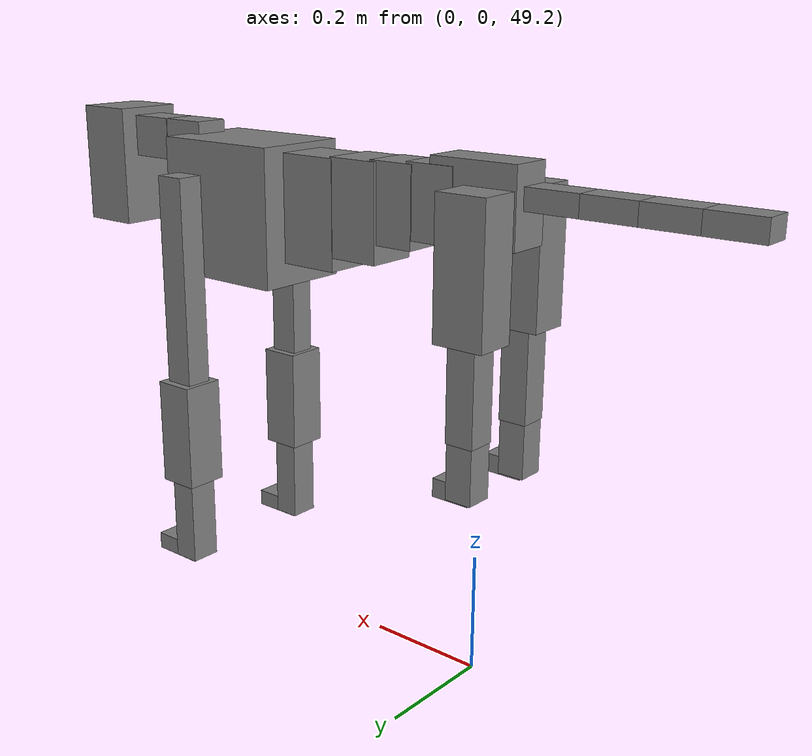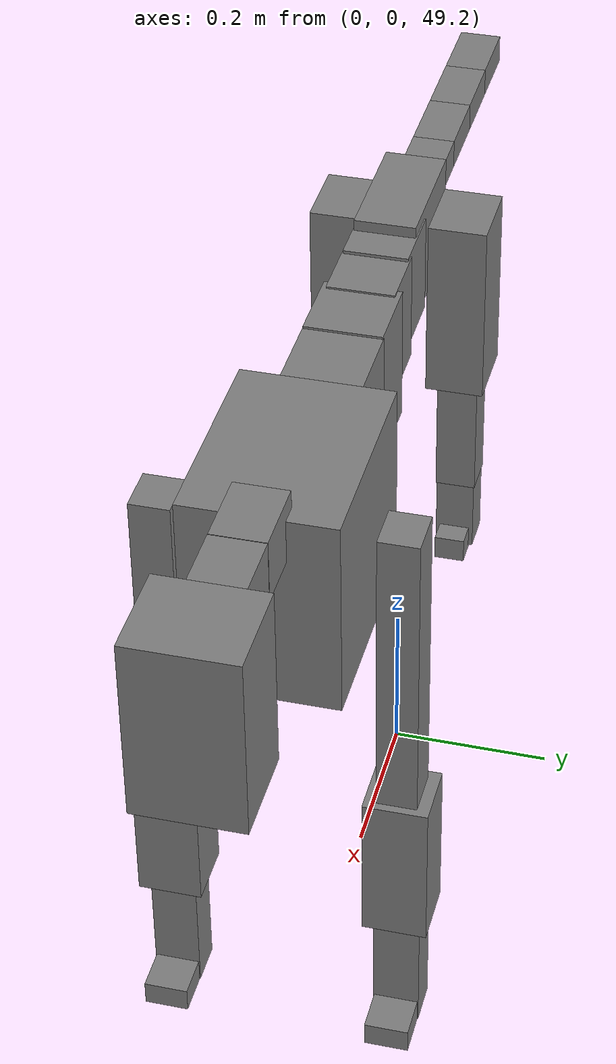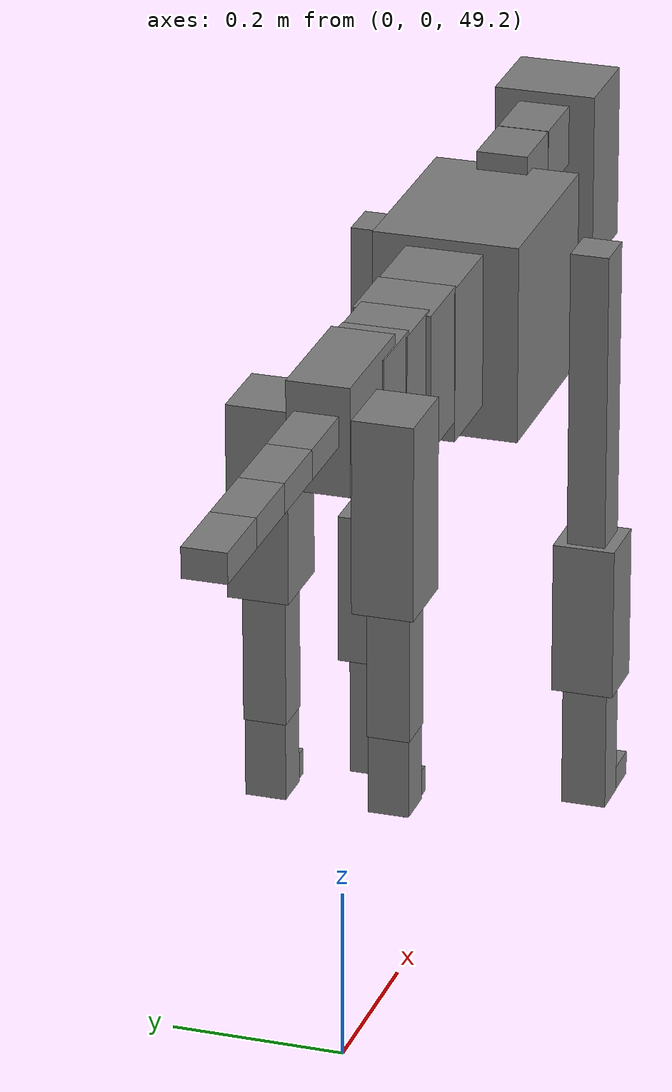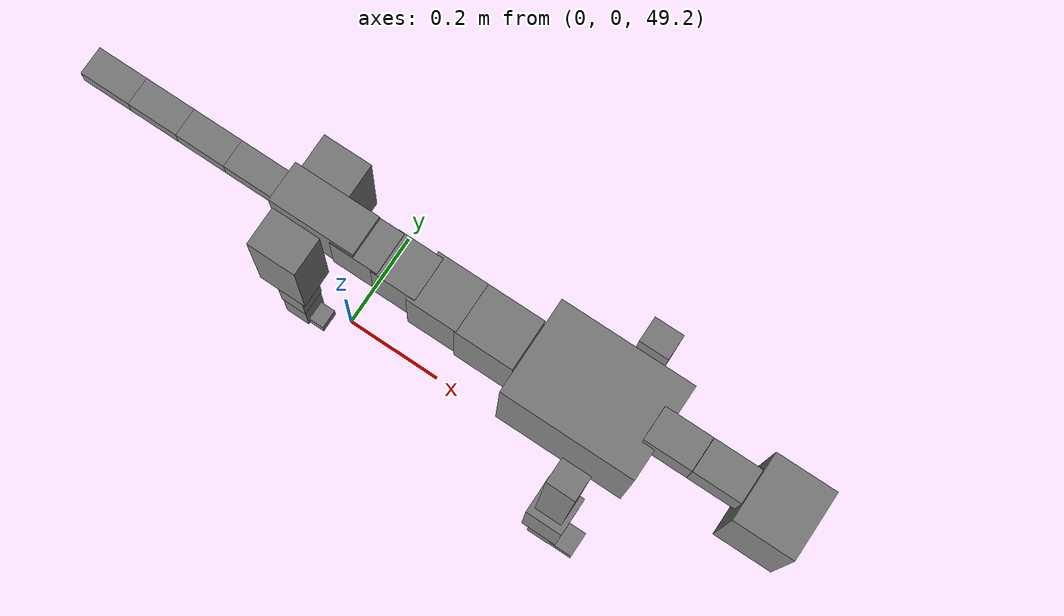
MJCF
<mujoco model="dog">

    <default>
        <joint armature="0.02" stiffness="1" damping="0.2" limited="true"/>
        <geom condim="3" friction="1 0.05 0.05" margin="0.01"/>
        <motor ctrllimited="true" ctrlrange="-1.0 1.0" forcelimited="true" gear="50"/>
    </default>

    <compiler inertiafromgeom="true" angle="radian"/>

    <option timestep="0.016" iterations="50" tolerance="1e-10" solver="Newton" jacobian="dense" cone="pyramidal"/>

    <size nconmax="20000" njmax="60000" nstack="5000000"/>
    <visual>
        <map force="0.1" zfar="30"/>
        <rgba haze="0.15 0.25 0.35 1"/>
        <quality shadowsize="2048"/>
        <global offwidth="800" offheight="800"/>
    </visual>

    <asset>
        <texture type="skybox" builtin="gradient" rgb1="0.3 0.5 0.7" rgb2="0 0 0" width="512" height="512"/>
        <texture name="texplane" type="2d" builtin="checker" rgb1=".2 .3 .4" rgb2=".1 0.15 0.2" width="512" height="512"
                 mark="cross" markrgb=".8 .8 .8"/>
        <texture name="texgeom" type="cube" builtin="flat" mark="cross" width="127" height="1278" rgb1="0.8 0.6 0.4"
                 rgb2="0.8 0.6 0.4" markrgb="1 1 1" random="0.01"/>

        <material name="matplane" reflectance="0.3" texture="texplane" texrepeat="1 1" texuniform="true"/>
        <material name="matgeom" texture="texgeom" texuniform="true" rgba="0.8 0.6 .4 1"/>
    </asset>

    <worldbody>
        <geom name="floor" pos="0 0 0" size="0 0 .25" type="plane" material="matplane" condim="3"/>

        <light directional="false" diffuse=".2 .2 .2" specular="0 0 0" pos="0 0 5" dir="0 0 -1" castshadow="false"/>
        <light mode="targetbodycom" target="torso" directional="false" diffuse=".8 .8 .8" specular="0.3 0.3 0.3"
               pos="0 0 4.0" dir="0 0 -1"/>

        <body name="root" pos="0 0 50">
            <freejoint name="root_1"/>
            <geom type="box" pos="0 0 -0.02" size="0.0774  0.0358  0.063" density="2030"/>

            <body name="spine1" pos="0.054 0 0">
                <joint name="spine1_y" axis="0 1 0" range="0 0.7" limited="true"/>
                <geom type="box" pos="0.02375 0 -0.03" size="0.04375  0.0375  0.05985" density="2030"/>

                <body name="spine2" pos="0.0612 0 0">
                    <joint name="spine2_y" axis="0 1 0" range="-0.15 0.15" limited="true"/>
                    <geom type="box" pos="0.03555  0  -0.04" size="0.04055  0.039  0.06615" density="2030"/>

                    <body name="spine3" pos="0.0730 0 0">
                        <joint name="spine3_y" axis="0 1 0" range="-0.15 0.15" limited="true"/>
                        <geom type="box" pos="0.03555  0  -0.057" size="0.04555  0.0445  0.081" density="2030"/>

                        <body name="spine4" pos="0.0780 0 0">
                            <joint name="spine4_y" axis="0 1 0" range="-0.15 0.15" limited="true"/>
                            <geom type="box" pos="0.05265  0  -0.07" size="0.05265  0.045  0.09135" density="2030"/>

                            <body name="torso" pos="0.1082 0 0">
                                <joint name="torso_y" axis="0 1 0" range="-0.15 0.15" limited="true"/>
                                <geom type="box" pos="0.11925  0  -0.085" size="0.11925  0.085  0.11745"
                                      density="2030"/>

                                <body name="neck1" pos="0.2160  0   0.0180">
                                    <joint name="neck1_y" axis="0 1 0" range="-1.2  -1" limited="true"/>
                                    <geom type="box" pos="0.0423  0  0" size="0.0423  0.03  0.036" density="2325"/>

                                    <body name="neck2" pos="0.0853  0  0">
                                        <joint name="neck2_y" axis="0 1 0" range="0.1  0" limited="true"/>
                                        <geom type="box" pos="0.0423  0  0" size="0.0423  0.03  0.036" density="2325"/>

                                        <body name="head" pos="0.0853  0  0">
                                            <joint name="head_y" axis="0 1 0" range="-0.3  -0.2" limited="true"/>
                                            <geom type="box" pos="0.0531  0  -0.055" size="0.0531  0.06  0.1044"
                                                  density="4030"/>

                                        </body>
                                    </body>
                                </body>

                                <body name="front_shoulder" pos="0.156  0   -0.0480">
                                    <joint name="front_shoulder_y" axis="0 1 0" range="-1 1.5" limited="true"/>
                                    <geom type="box" pos="0 0.13 -0.1661" size="0.0265  0.0226  0.1928" density="1158"/>
                                    <geom type="box" pos="0 -0.13 -0.1661" size="0.0265  0.0226  0.1928"
                                          density="1158"/>

                                    <body name="front_elbow" pos="0  0  -0.3322">
                                        <joint name="front_elbow_y" axis="0 1 0" range="-2 0" limited="true"/>
                                        <geom type="box" pos="0 0.13 -0.0922" size="0.0357  0.0365  0.0922"
                                              density="1081"/>
                                        <geom type="box" pos="0 -0.13 -0.0922" size="0.0357  0.0365  0.0922"
                                              density="1081"/>

                                        <body name="front_wrist" pos="0  0  -0.1844">
                                            <joint name="front_wrist_y" axis="0 1 0" range="-0.2 0" limited="true"/>
                                            <geom type="box" pos="0 0.13 -0.0679" size="0.0237  0.0263  0.0811"
                                                  density="1664"/>
                                            <geom type="box" pos="0 -0.13 -0.0679" size="0.0237  0.0263  0.0811"
                                                  density="1664"/>

                                            <body name="front_finger_end" pos="0  0  -0.1359">
                                                <joint name="front_finger_y" axis="0 1 0" range="-0.4 1"
                                                       limited="true"/>
                                                <geom type="box" pos="0.0252  0.13  0.0003"
                                                      size="0.0462  0.0252  0.0147" density="1515"/>
                                                <geom type="box" pos="0.0252  -0.13  0.0003"
                                                      size="0.0462  0.0252  0.0147" density="1515"/>

                                            </body>

                                        </body>
                                    </body>
                                </body>

                            </body>
                        </body>
                    </body>
                </body>
            </body>

            <body name="back_hip" pos="-0.03 0 -0.018">
                <joint name="back_hip_y" axis="0 1 0" range="-1.5 0.3" limited="true"/>
                <geom type="box" pos="0 0.07 -0.0896" size="0.0442  0.0346  0.1124" density="1154"/>
                <geom type="box" pos="0 -0.07 -0.0896" size="0.0442  0.0346  0.1124" density="1154"/>

                <body name="back_knee" pos="0  0  -0.1792">
                    <joint name="back_knee_y" axis="0 1 0" range="0 2.8" limited="true"/>
                    <geom type="box" pos="0 0.07 -0.0805" size="0.0245  0.0242  0.0961" density="1227"/>
                    <geom type="box" pos="0 -0.07 -0.0805" size="0.0245  0.0242  0.0961" density="1227"/>

                    <body name="back_ankle" pos="0  0  -0.1610">
                        <joint name="back_ankle_y" axis="0 1 0" range="-2.2 0" limited="true"/>
                        <geom type="box" pos="0 0.07 -0.0478" size="0.0231  0.0231  0.0590" density="1284"/>
                        <geom type="box" pos="0 -0.07 -0.0478" size="0.0231  0.0231  0.0590" density="1284"/>

                        <body name="back_toe_end" pos="0  0  -0.0955">
                            <joint name="back_toe_y" axis="0 1 0" range="-0.4 1" limited="true"/>
                            <geom type="box" pos="0.0182  0.07  -0.0003" size="0.0333  0.0182  0.0153" density="1515"/>
                            <geom type="box" pos="0.0182  -0.07  -0.0003" size="0.0333  0.0182  0.0153" density="1515"/>

                        </body>
                    </body>
                </body>
            </body>

            <body name="tail1" pos="-0.074 0 -0.006">
                <joint name="tail1_y" axis="0 1 0" range="-0.2 0.2" limited="true"/>
                <geom type="box" pos="-0.0536  0  0" size="0.045  0.025  0.0175" density="1587"/>

                <body name="tail2" pos="-0.09 0 0">
                    <joint name="tail2_y" axis="0 1 0" range="-0.2 0.2" limited="true"/>
                    <geom type="box" pos="-0.0536  0  0" size="0.045  0.025  0.0175" density="1587"/>

                    <body name="tail3" pos="-0.09 0 0">
                        <joint name="tail3_y" axis="0 1 0" range="-0.2 0.2" limited="true"/>
                        <geom type="box" pos="-0.0536  0  0" size="0.045  0.025  0.0175" density="1587"/>

                        <body name="tail4" pos="-0.09 0 0">
                            <joint name="tail4_y" axis="0 1 0" range="-0.2 0.2" limited="true"/>
                            <geom type="box" pos="-0.0536  0  0" size="0.045  0.025  0.0175" density="1587"/>

                        </body>
                    </body>
                </body>
            </body>
        </body>
    </worldbody>

    <actuator>
        <motor joint="spine1_y" forcerange="-150 150     "/>
        <motor joint="spine2_y" forcerange="-150 150     "/>
        <motor joint="spine3_y" forcerange="-150 150     "/>
        <motor joint="spine4_y" forcerange="-150 150     "/>
        <motor joint="torso_y" forcerange="-150 150     "/>
        <motor joint="neck1_y" forcerange="-100 100       "/>
        <motor joint="neck2_y" forcerange="-100 100       "/>
        <motor joint="head_y" forcerange="-150 150       "/>
        <motor joint="front_shoulder_y" forcerange="-103.40 147.32"/>
        <motor joint="front_elbow_y" forcerange="-199.67 165.78"/>
        <motor joint="front_wrist_y" forcerange="-86.99 123.59"/>
        <motor joint="front_finger_y" forcerange="-52.49 42.01"/>
        <motor joint="back_hip_y" forcerange="-354.41 307.31"/>
        <motor joint="back_knee_y" forcerange="-246.90 304.49"/>
        <motor joint="back_angle_y" forcerange="-58.42 210.95"/>
        <motor joint="back_toe_y" forcerange="-21.54 43.90"/>
        <motor joint="tail1_y" forcerange="-50 50     "/>
        <motor joint="tail2_y" forcerange="-50 50     "/>
        <motor joint="tail3_y" forcerange="-50 50     "/>
        <motor joint="tail4_y" forcerange="-50 50     "/>
    </actuator>
</mujoco>
